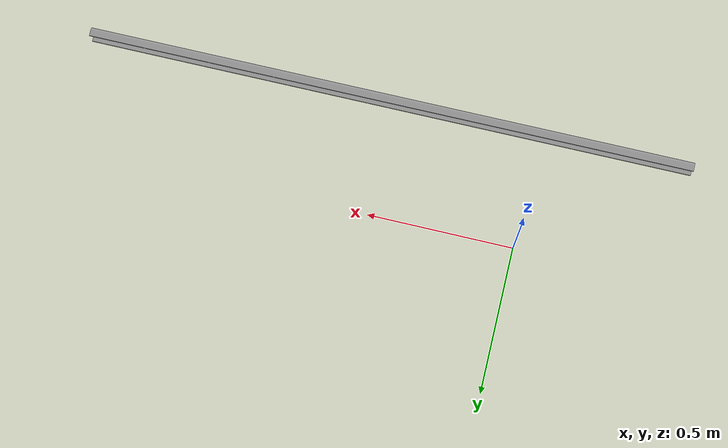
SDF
<?xml version="1.0" ?>
<sdf version="1.5">
  <model name="u_rail_100">
    <static>true</static>
    <link name="link">
      <collision name="collision">
       <pose>-0.5 -0.345 0.3085 0 1.5758 0</pose>
        <geometry>
          <surface>
          <friction>
            <ode>
              <mu>0.2</mu>
              <mu2>0.2</mu2>
            </ode>
          </friction>
          </surface>
          <mesh>
            <uri>model://u_rail_100/meshes/model.dae</uri>
            <scale>0.00103 0.001 0.002</scale>
          </mesh>
        </geometry>
      </collision>
      <visual name="visual">
        <pose>-0.5 -0.345 0.3085 0 1.5758 0</pose>
        <geometry>
          <mesh>
            <uri>model://u_rail_100/meshes/model.dae</uri>
            <scale>0.00103 0.001 0.002</scale>
          </mesh>
        </geometry>
      </visual>
    </link>
  </model>
</sdf>
